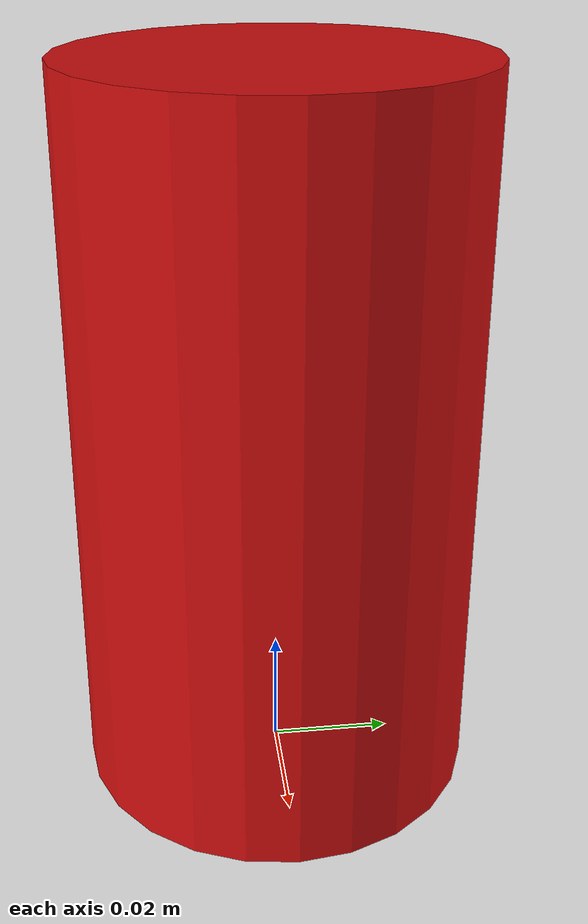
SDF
<?xml version="1.0"?>
<sdf version="1.9">
  <model name="red_can">
    <static>true</static>
    <link name="link">
      <collision name="collision">
        <pose>0 0 0.06 0 0 0</pose>
        <geometry><cylinder><radius>0.033</radius><length>0.12</length></cylinder></geometry>
      </collision>
      <visual name="visual">
        <pose>0 0 0.06 0 0 0</pose>
        <geometry><cylinder><radius>0.033</radius><length>0.12</length></cylinder></geometry>
        <material>
          <ambient>0.8 0.05 0.05 1</ambient>
          <diffuse>0.8 0.05 0.05 1</diffuse>
          <specular>0.3 0.3 0.3 1</specular>
        </material>
      </visual>
    </link>
  </model>
</sdf>
